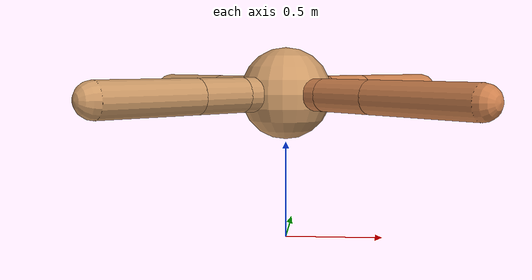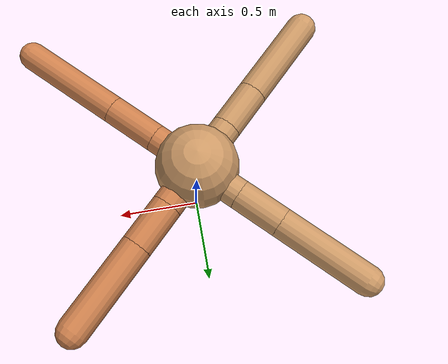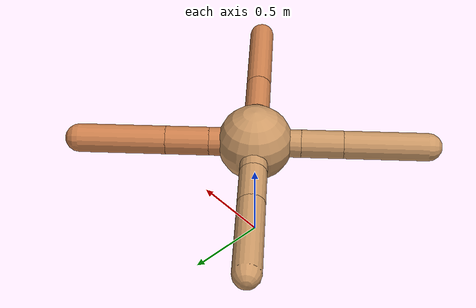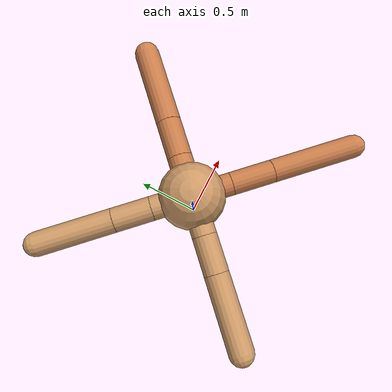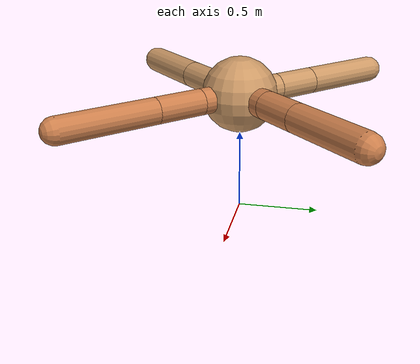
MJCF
<?xml version="1.0" ?>
<mujoco model="ant">

	<compiler angle="degree" coordinate="local" inertiafromgeom="true"/>

	<option integrator="RK4" timestep="0.01"/>

	<custom>

		<numeric data="0.0 0.0 0.55 1.0 0.0 0.0 0.0 0.0 1.0 0.0 -1.0 0.0 -1.0 0.0 1.0" name="init_qpos"/>

	</custom>

	<default>

		<joint armature="1" damping="1" limited="true"/>

		<geom conaffinity="0" condim="3" density="5.0" friction="1.5 0.1 0.1" margin="0.01" rgba="0.8 0.6 0.4 1"/>

	</default>

	<worldbody>

		<body name="torso" pos="0 0 0.75">

			<geom name="torso_geom" pos="0 0 0" size="0.2339039618188227" type="sphere"/>

			<!--joint armature="0" damping="0" limited="false" margin="0.01" name="root" pos="0 0 0" type="free"/-->

			<body name="front_left_leg" pos="0 0 0">

				<geom fromto="0 0 0 0.2 0.2 0" name="aux_1_geom" size="0.0877751769338643" type="capsule" rgba=".8 .5 .3 1"/>

				<body name="aux_1" pos="0.2 0.2 0">

					<joint axis="0 0 1" name="hip_1" pos="0.0 0.0 0.0" range="-40 40" type="hinge"/>

					<geom fromto="0 0 0 0.19031365662493874 0.19031365662493874 0" name="left_leg_geom" size="0.0877751769338643" type="capsule" rgba=".8 .5 .3 1"/>

					<body pos="0.19031365662493874 0.19031365662493874 0" name="front_left_foot">

						<joint axis="-1 1 0" name="ankle_1" pos="0.0 0.0 0.0" range="30 100" type="hinge"/>

						<geom fromto="0 0 0 0.3806273132498775 0.3806273132498775 0" name="left_ankle_geom" size="0.0877751769338643" type="capsule" rgba=".8 .5 .3 1"/>

					</body>

				</body>

			</body>

			<body name="front_right_leg" pos="0 0 0">

				<geom fromto="0 0 0 -0.2 0.2 0" name="aux_2_geom" size="0.08500676036932082" type="capsule"/>

				<body name="aux_2" pos="-0.2 0.2 0">

					<joint axis="0 0 1" name="hip_2" pos="0.0 0.0 0.0" range="-40 40" type="hinge"/>

					<geom fromto="0 0 0 -0.18865003791873733 0.18865003791873733 0" name="right_leg_geom" size="0.08500676036932082" type="capsule"/>

					<body pos="-0.18865003791873733 0.18865003791873733 0" name="front_right_foot">

						<joint axis="1 1 0" name="ankle_2" pos="0.0 0.0 0.0" range="-100 -30" type="hinge"/>

						<geom fromto="0 0 0 -0.37730007583747466 0.37730007583747466 0" name="right_ankle_geom" size="0.08500676036932082" type="capsule"/>

					</body>

				</body>

			</body>

			<body name="left_back_leg" pos="0 0 0">

				<geom fromto="0 0 0 -0.2 -0.2 0" name="aux_3_geom" size="0.08627337146266967" type="capsule"/>

				<body name="aux_3" pos="-0.2 -0.2 0">

					<joint axis="0 0 1" name="hip_3" pos="0.0 0.0 0.0" range="-40 40" type="hinge"/>

					<geom fromto="0 0 0 -0.1841486734943174 -0.1841486734943174 0" name="back_leg_geom" size="0.08627337146266967" type="capsule"/>

					<body pos="-0.1841486734943174 -0.1841486734943174 0" name="left_back_foot">

						<joint axis="-1 1 0" name="ankle_3" pos="0.0 0.0 0.0" range="-100 -30" type="hinge"/>

						<geom fromto="0 0 0 -0.3682973469886348 -0.3682973469886348 0" name="third_ankle_geom" size="0.08627337146266967" type="capsule"/>

					</body>

				</body>

			</body>

			<body name="right_back_leg" pos="0 0 0">

				<geom fromto="0 0 0 0.2 -0.2 0" name="aux_4_geom" size="0.0800571908032821" type="capsule" rgba=".8 .5 .3 1"/>

				<body name="aux_4" pos="0.2 -0.2 0">

					<joint axis="0 0 1" name="hip_4" pos="0.0 0.0 0.0" range="-40 40" type="hinge"/>

					<geom fromto="0 0 0 0.20946113616510975 -0.20946113616510975 0" name="rightback_leg_geom" size="0.0800571908032821" type="capsule" rgba=".8 .5 .3 1"/>

					<body pos="0.20946113616510975 -0.20946113616510975 0" name="right_back_foot">

						<joint axis="1 1 0" name="ankle_4" pos="0.0 0.0 0.0" range="30 100" type="hinge"/>

						<geom fromto="0 0 0 0.4189222723302195 -0.4189222723302195 0" name="fourth_ankle_geom" size="0.0800571908032821" type="capsule" rgba=".8 .5 .3 1"/>

					</body>

				</body>

			</body>

		</body>

	</worldbody>

	<actuator>

		<motor ctrllimited="true" ctrlrange="-1.0 1.0" joint="hip_4" gear="150"/>

		<motor ctrllimited="true" ctrlrange="-1.0 1.0" joint="ankle_4" gear="150"/>

		<motor ctrllimited="true" ctrlrange="-1.0 1.0" joint="hip_1" gear="150"/>

		<motor ctrllimited="true" ctrlrange="-1.0 1.0" joint="ankle_1" gear="150"/>

		<motor ctrllimited="true" ctrlrange="-1.0 1.0" joint="hip_2" gear="150"/>

		<motor ctrllimited="true" ctrlrange="-1.0 1.0" joint="ankle_2" gear="150"/>

		<motor ctrllimited="true" ctrlrange="-1.0 1.0" joint="hip_3" gear="150"/>

		<motor ctrllimited="true" ctrlrange="-1.0 1.0" joint="ankle_3" gear="150"/>

	</actuator>

</mujoco>
